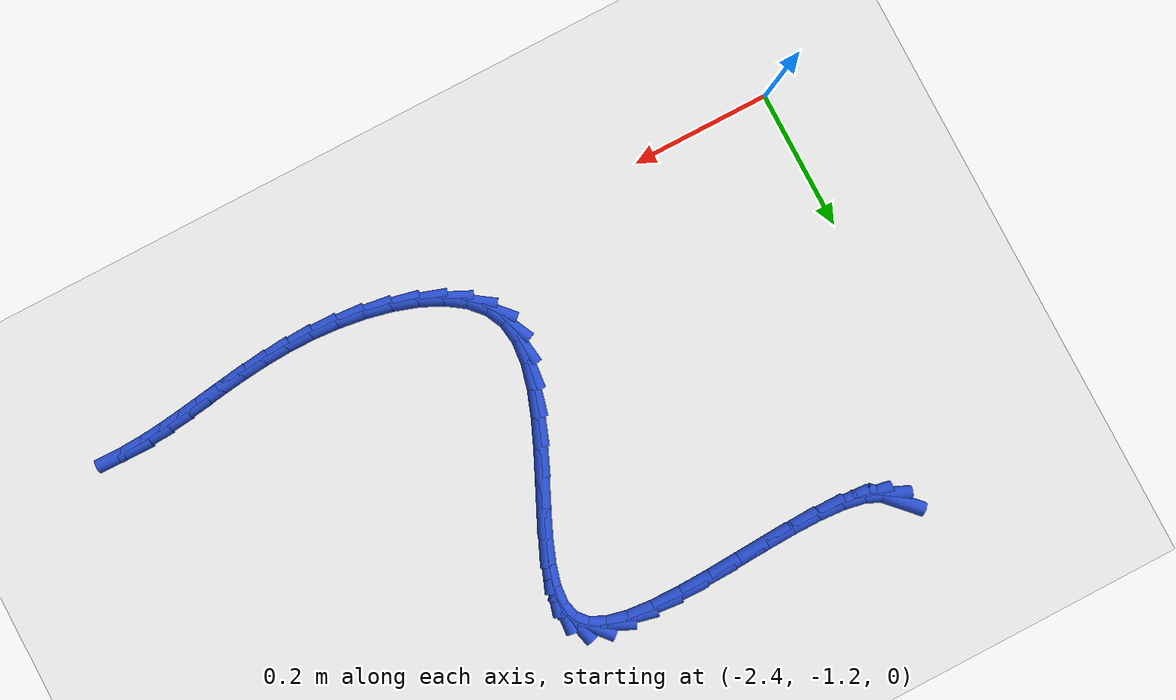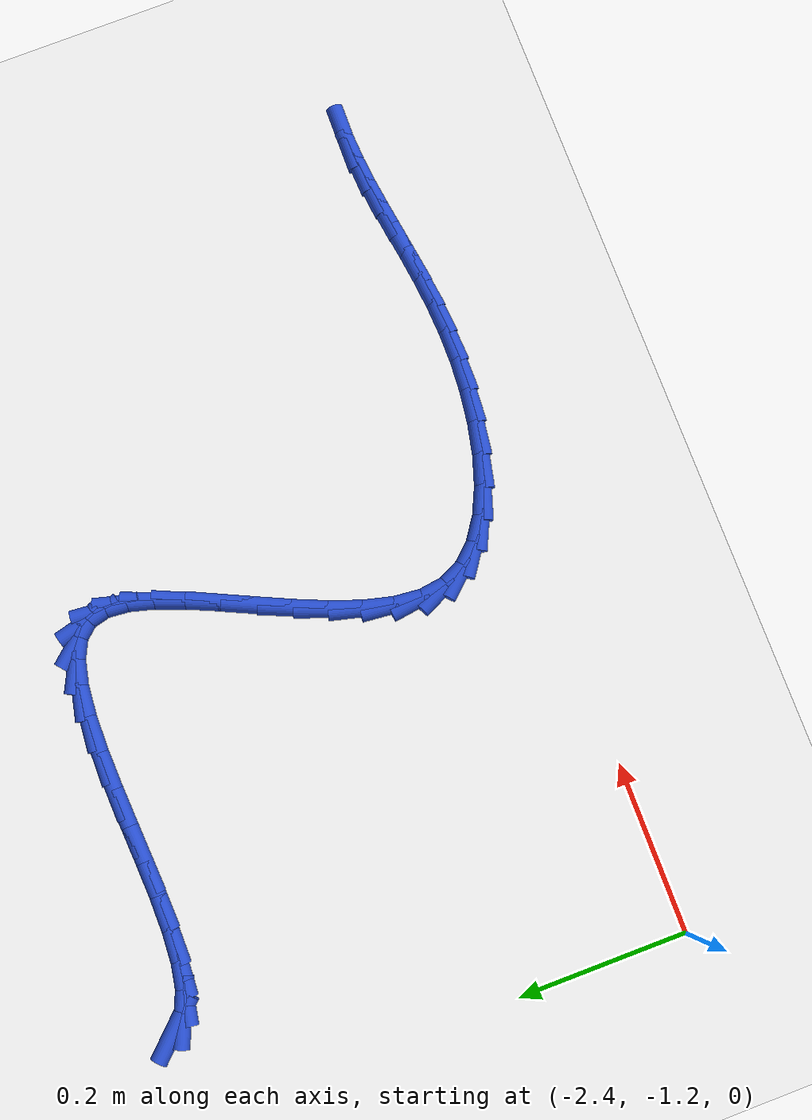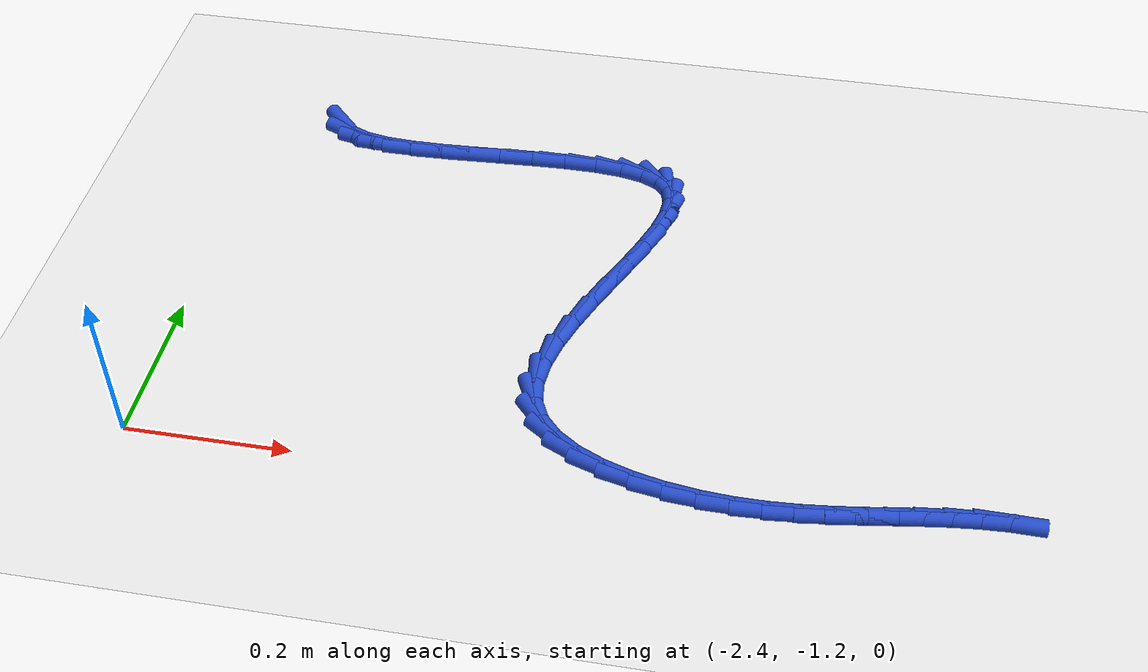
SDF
<sdf version="1.6">
 <world name="default">
  <model name="ground_plane">
   <static>1</static>
   <link name="link">
    <collision name="collision">
     <geometry><plane><normal>0 0 1</normal><size>100 100</size></plane></geometry>
     <surface><friction><ode><mu>100</mu><mu2>50</mu2></ode></friction></surface>
    </collision>
    <visual name="visual">
     <cast_shadows>0</cast_shadows>
     <geometry><plane><normal>0 0 1</normal><size>100 100</size></plane></geometry>
     <material>
      <script><uri>file://media/materials/scripts/gazebo.material</uri><name>Gazebo/WhiteGlow</name></script>
     </material>
    </visual>
   </link>
  </model>
  <model name="line">
   <link name="link_152">
    <pose>-2.29422943024641 -0.6340302481217502 0.01 0 1.57 -0.8101605777652685</pose>
    <collision name="collision">
     <geometry><cylinder><radius>0.01</radius><length>0.08</length></cylinder></geometry>
    </collision>
    <visual name="visual">
     <material>
      <script><name>Gazebo/Blue</name><uri>file://media/materials/scripts/gazebo.material</uri></script>
     </material>
     <geometry><cylinder><radius>0.01</radius><length>0.08</length></cylinder></geometry>
    </visual>
   </link>
   <link name="link_153">
    <pose>-2.280447328265743 -0.6485123839584834 0.01 0 1.57 -0.40256517774846556</pose>
    <collision name="collision">
     <geometry><cylinder><radius>0.01</radius><length>0.08</length></cylinder></geometry>
    </collision>
    <visual name="visual">
     <material>
      <script><name>Gazebo/Blue</name><uri>file://media/materials/scripts/gazebo.material</uri></script>
     </material>
     <geometry><cylinder><radius>0.01</radius><length>0.08</length></cylinder></geometry>
    </visual>
   </link>
   <link name="link_154">
    <pose>-2.2579671868441413 -0.6580848827711578 0.01 0 1.57 -0.18310149964613587</pose>
    <collision name="collision">
     <geometry><cylinder><radius>0.01</radius><length>0.08</length></cylinder></geometry>
    </collision>
    <visual name="visual">
     <material>
      <script><name>Gazebo/Blue</name><uri>file://media/materials/scripts/gazebo.material</uri></script>
     </material>
     <geometry><cylinder><radius>0.01</radius><length>0.08</length></cylinder></geometry>
    </visual>
   </link>
   <link name="link_155">
    <pose>-2.2282357538673785 -0.6635904171669803 0.01 0 1.57 -0.06410733100552299</pose>
    <collision name="collision">
     <geometry><cylinder><radius>0.01</radius><length>0.08</length></cylinder></geometry>
    </collision>
    <visual name="visual">
     <material>
      <script><name>Gazebo/Blue</name><uri>file://media/materials/scripts/gazebo.material</uri></script>
     </material>
     <geometry><cylinder><radius>0.01</radius><length>0.08</length></cylinder></geometry>
    </visual>
   </link>
   <link name="link_156">
    <pose>-2.1926997772212284 -0.6658716597531583 0.01 0 1.57 0.0025160920697075355</pose>
    <collision name="collision">
     <geometry><cylinder><radius>0.01</radius><length>0.08</length></cylinder></geometry>
    </collision>
    <visual name="visual">
     <material>
      <script><name>Gazebo/Blue</name><uri>file://media/materials/scripts/gazebo.material</uri></script>
     </material>
     <geometry><cylinder><radius>0.01</radius><length>0.08</length></cylinder></geometry>
    </visual>
   </link>
   <link name="link_157">
    <pose>-2.152806004791467 -0.6657712831368983 0.01 0 1.57 0.03827892358250948</pose>
    <collision name="collision">
     <geometry><cylinder><radius>0.01</radius><length>0.08</length></cylinder></geometry>
    </collision>
    <visual name="visual">
     <material>
      <script><name>Gazebo/Blue</name><uri>file://media/materials/scripts/gazebo.material</uri></script>
     </material>
     <geometry><cylinder><radius>0.01</radius><length>0.08</length></cylinder></geometry>
    </visual>
   </link>
   <link name="link_158">
    <pose>-2.110001184463868 -0.6641319599254081 0.01 0 1.57 0.05271019018104346</pose>
    <collision name="collision">
     <geometry><cylinder><radius>0.01</radius><length>0.08</length></cylinder></geometry>
    </collision>
    <visual name="visual">
     <material>
      <script><name>Gazebo/Blue</name><uri>file://media/materials/scripts/gazebo.material</uri></script>
     </material>
     <geometry><cylinder><radius>0.01</radius><length>0.08</length></cylinder></geometry>
    </visual>
   </link>
   <link name="link_159">
    <pose>-2.0657320641242034 -0.6617963627258936 0.01 0 1.57 0.04939224189444913</pose>
    <collision name="collision">
     <geometry><cylinder><radius>0.01</radius><length>0.08</length></cylinder></geometry>
    </collision>
    <visual name="visual">
     <material>
      <script><name>Gazebo/Blue</name><uri>file://media/materials/scripts/gazebo.material</uri></script>
     </material>
     <geometry><cylinder><radius>0.01</radius><length>0.08</length></cylinder></geometry>
    </visual>
   </link>
   <link name="link_160">
    <pose>-2.0214453916582498 -0.6596071641455628 0.01 0 1.57 0.027995437405188672</pose>
    <collision name="collision">
     <geometry><cylinder><radius>0.01</radius><length>0.08</length></cylinder></geometry>
    </collision>
    <visual name="visual">
     <material>
      <script><name>Gazebo/Blue</name><uri>file://media/materials/scripts/gazebo.material</uri></script>
     </material>
     <geometry><cylinder><radius>0.01</radius><length>0.08</length></cylinder></geometry>
    </visual>
   </link>
   <link name="link_161">
    <pose>-1.9785879149517802 -0.6584070367916222 0.01 0 1.57 -0.015796391371708022</pose>
    <collision name="collision">
     <geometry><cylinder><radius>0.01</radius><length>0.08</length></cylinder></geometry>
    </collision>
    <visual name="visual">
     <material>
      <script><name>Gazebo/Blue</name><uri>file://media/materials/scripts/gazebo.material</uri></script>
     </material>
     <geometry><cylinder><radius>0.01</radius><length>0.08</length></cylinder></geometry>
    </visual>
   </link>
   <link name="link_162">
    <pose>-1.9386063818905692 -0.659038653271279 0.01 0 1.57 -0.09244857120028631</pose>
    <collision name="collision">
     <geometry><cylinder><radius>0.01</radius><length>0.08</length></cylinder></geometry>
    </collision>
    <visual name="visual">
     <material>
      <script><name>Gazebo/Blue</name><uri>file://media/materials/scripts/gazebo.material</uri></script>
     </material>
     <geometry><cylinder><radius>0.01</radius><length>0.08</length></cylinder></geometry>
    </visual>
   </link>
   <link name="link_163">
    <pose>-1.90294754036039 -0.6623446861917399 0.01 0 1.57 -0.22443321429692567</pose>
    <collision name="collision">
     <geometry><cylinder><radius>0.01</radius><length>0.08</length></cylinder></geometry>
    </collision>
    <visual name="visual">
     <material>
      <script><name>Gazebo/Blue</name><uri>file://media/materials/scripts/gazebo.material</uri></script>
     </material>
     <geometry><cylinder><radius>0.01</radius><length>0.08</length></cylinder></geometry>
    </visual>
   </link>
   <link name="link_164">
    <pose>-1.8730581382470182 -0.6691678081602127 0.01 0 1.57 -0.4582089345431656</pose>
    <collision name="collision">
     <geometry><cylinder><radius>0.01</radius><length>0.08</length></cylinder></geometry>
    </collision>
    <visual name="visual">
     <material>
      <script><name>Gazebo/Blue</name><uri>file://media/materials/scripts/gazebo.material</uri></script>
     </material>
     <geometry><cylinder><radius>0.01</radius><length>0.08</length></cylinder></geometry>
    </visual>
   </link>
   <link name="link_165">
    <pose>-1.8503849234362257 -0.680350691783904 0.01 0 1.57 -0.8615199114040122</pose>
    <collision name="collision">
     <geometry><cylinder><radius>0.01</radius><length>0.08</length></cylinder></geometry>
    </collision>
    <visual name="visual">
     <material>
      <script><name>Gazebo/Blue</name><uri>file://media/materials/scripts/gazebo.material</uri></script>
     </material>
     <geometry><cylinder><radius>0.01</radius><length>0.08</length></cylinder></geometry>
    </visual>
   </link>
   <link name="link_166">
    <pose>-1.8363389090805864 -0.6967161633895399 0.01 0 1.57 -1.3331660433897738</pose>
    <collision name="collision">
     <geometry><cylinder><radius>0.01</radius><length>0.08</length></cylinder></geometry>
    </collision>
    <visual name="visual">
     <material>
      <script><name>Gazebo/Blue</name><uri>file://media/materials/scripts/gazebo.material</uri></script>
     </material>
     <geometry><cylinder><radius>0.01</radius><length>0.08</length></cylinder></geometry>
    </visual>
   </link>
   <link name="link_167">
    <pose>-1.8310877820351614 -0.7183965333766903 0.01 0 1.57 1.4881688129031339</pose>
    <collision name="collision">
     <geometry><cylinder><radius>0.01</radius><length>0.08</length></cylinder></geometry>
    </collision>
    <visual name="visual">
     <material>
      <script><name>Gazebo/Blue</name><uri>file://media/materials/scripts/gazebo.material</uri></script>
     </material>
     <geometry><cylinder><radius>0.01</radius><length>0.08</length></cylinder></geometry>
    </visual>
   </link>
   <link name="link_168">
    <pose>-1.8332637587417895 -0.7446713458372124 0.01 0 1.57 1.3066391110331106</pose>
    <collision name="collision">
     <geometry><cylinder><radius>0.01</radius><length>0.08</length></cylinder></geometry>
    </collision>
    <visual name="visual">
     <material>
      <script><name>Gazebo/Blue</name><uri>file://media/materials/scripts/gazebo.material</uri></script>
     </material>
     <geometry><cylinder><radius>0.01</radius><length>0.08</length></cylinder></geometry>
    </visual>
   </link>
   <link name="link_169">
    <pose>-1.8414040750637022 -0.7747673947502777 0.01 0 1.57 1.2064070477604258</pose>
    <collision name="collision">
     <geometry><cylinder><radius>0.01</radius><length>0.08</length></cylinder></geometry>
    </collision>
    <visual name="visual">
     <material>
      <script><name>Gazebo/Blue</name><uri>file://media/materials/scripts/gazebo.material</uri></script>
     </material>
     <geometry><cylinder><radius>0.01</radius><length>0.08</length></cylinder></geometry>
    </visual>
   </link>
   <link name="link_170">
    <pose>-1.8540459668641314 -0.807911474095058 0.01 0 1.57 1.1540118308186342</pose>
    <collision name="collision">
     <geometry><cylinder><radius>0.01</radius><length>0.08</length></cylinder></geometry>
    </collision>
    <visual name="visual">
     <material>
      <script><name>Gazebo/Blue</name><uri>file://media/materials/scripts/gazebo.material</uri></script>
     </material>
     <geometry><cylinder><radius>0.01</radius><length>0.08</length></cylinder></geometry>
    </visual>
   </link>
   <link name="link_171">
    <pose>-1.8697266700063102 -0.8433303778507247 0.01 0 1.57 1.1335649614290755</pose>
    <collision name="collision">
     <geometry><cylinder><radius>0.01</radius><length>0.08</length></cylinder></geometry>
    </collision>
    <visual name="visual">
     <material>
      <script><name>Gazebo/Blue</name><uri>file://media/materials/scripts/gazebo.material</uri></script>
     </material>
     <geometry><cylinder><radius>0.01</radius><length>0.08</length></cylinder></geometry>
    </visual>
   </link>
   <link name="link_172">
    <pose>-1.8869834203534706 -0.880250899996451 0.01 0 1.57 1.1385286536412638</pose>
    <collision name="collision">
     <geometry><cylinder><radius>0.01</radius><length>0.08</length></cylinder></geometry>
    </collision>
    <visual name="visual">
     <material>
      <script><name>Gazebo/Blue</name><uri>file://media/materials/scripts/gazebo.material</uri></script>
     </material>
     <geometry><cylinder><radius>0.01</radius><length>0.08</length></cylinder></geometry>
    </visual>
   </link>
   <link name="link_173">
    <pose>-1.904353453768844 -0.9178998345114062 0.01 0 1.57 1.1680522283676946</pose>
    <collision name="collision">
     <geometry><cylinder><radius>0.01</radius><length>0.08</length></cylinder></geometry>
    </collision>
    <visual name="visual">
     <material>
      <script><name>Gazebo/Blue</name><uri>file://media/materials/scripts/gazebo.material</uri></script>
     </material>
     <geometry><cylinder><radius>0.01</radius><length>0.08</length></cylinder></geometry>
    </visual>
   </link>
   <link name="link_174">
    <pose>-1.920374006115662 -0.9555039753747625 0.01 0 1.57 1.2260761514535652</pose>
    <collision name="collision">
     <geometry><cylinder><radius>0.01</radius><length>0.08</length></cylinder></geometry>
    </collision>
    <visual name="visual">
     <material>
      <script><name>Gazebo/Blue</name><uri>file://media/materials/scripts/gazebo.material</uri></script>
     </material>
     <geometry><cylinder><radius>0.01</radius><length>0.08</length></cylinder></geometry>
    </visual>
   </link>
   <link name="link_175">
    <pose>-1.9335823132571583 -0.9922901165656925 0.01 0 1.57 1.322222429868844</pose>
    <collision name="collision">
     <geometry><cylinder><radius>0.01</radius><length>0.08</length></cylinder></geometry>
    </collision>
    <visual name="visual">
     <material>
      <script><name>Gazebo/Blue</name><uri>file://media/materials/scripts/gazebo.material</uri></script>
     </material>
     <geometry><cylinder><radius>0.01</radius><length>0.08</length></cylinder></geometry>
    </visual>
   </link>
   <link name="link_176">
    <pose>-1.9425156110565636 -1.0274850520633672 0.01 0 1.57 1.4737680258324266</pose>
    <collision name="collision">
     <geometry><cylinder><radius>0.01</radius><length>0.08</length></cylinder></geometry>
    </collision>
    <visual name="visual">
     <material>
      <script><name>Gazebo/Blue</name><uri>file://media/materials/scripts/gazebo.material</uri></script>
     </material>
     <geometry><cylinder><radius>0.01</radius><length>0.08</length></cylinder></geometry>
    </visual>
   </link>
   <link name="link_177">
    <pose>-1.945711135377111 -1.0603155758469587 0.01 0 1.57 -1.4367243240580887</pose>
    <collision name="collision">
     <geometry><cylinder><radius>0.01</radius><length>0.08</length></cylinder></geometry>
    </collision>
    <visual name="visual">
     <material>
      <script><name>Gazebo/Blue</name><uri>file://media/materials/scripts/gazebo.material</uri></script>
     </material>
     <geometry><cylinder><radius>0.01</radius><length>0.08</length></cylinder></geometry>
    </visual>
   </link>
   <link name="link_178">
    <pose>-1.9417061220820315 -1.090008481895638 0.01 0 1.57 -1.1238400393866936</pose>
    <collision name="collision">
     <geometry><cylinder><radius>0.01</radius><length>0.08</length></cylinder></geometry>
    </collision>
    <visual name="visual">
     <material>
      <script><name>Gazebo/Blue</name><uri>file://media/materials/scripts/gazebo.material</uri></script>
     </material>
     <geometry><cylinder><radius>0.01</radius><length>0.08</length></cylinder></geometry>
    </visual>
   </link>
   <link name="link_179">
    <pose>-1.929305175521945 -1.1158811610620094 0.01 0 1.57 -0.8283025939876512</pose>
    <collision name="collision">
     <geometry><cylinder><radius>0.01</radius><length>0.08</length></cylinder></geometry>
    </collision>
    <visual name="visual">
     <material>
      <script><name>Gazebo/Blue</name><uri>file://media/materials/scripts/gazebo.material</uri></script>
     </material>
     <geometry><cylinder><radius>0.01</radius><length>0.08</length></cylinder></geometry>
    </visual>
   </link>
   <link name="link_180">
    <pose>-1.9091297129847034 -1.1378666248850673 0.01 0 1.57 -0.6027654111693783</pose>
    <collision name="collision">
     <geometry><cylinder><radius>0.01</radius><length>0.08</length></cylinder></geometry>
    </collision>
    <visual name="visual">
     <material>
      <script><name>Gazebo/Blue</name><uri>file://media/materials/scripts/gazebo.material</uri></script>
     </material>
     <geometry><cylinder><radius>0.01</radius><length>0.08</length></cylinder></geometry>
    </visual>
   </link>
   <link name="link_181">
    <pose>-1.882557075608087 -1.156154027046905 0.01 0 1.57 -0.43759730698753385</pose>
    <collision name="collision">
     <geometry><cylinder><radius>0.01</radius><length>0.08</length></cylinder></geometry>
    </collision>
    <visual name="visual">
     <material>
      <script><name>Gazebo/Blue</name><uri>file://media/materials/scripts/gazebo.material</uri></script>
     </material>
     <geometry><cylinder><radius>0.01</radius><length>0.08</length></cylinder></geometry>
    </visual>
   </link>
   <link name="link_182">
    <pose>-1.8509670837782428 -1.1709333613142205 0.01 0 1.57 -0.3145480339406696</pose>
    <collision name="collision">
     <geometry><cylinder><radius>0.01</radius><length>0.08</length></cylinder></geometry>
    </collision>
    <visual name="visual">
     <material>
      <script><name>Gazebo/Blue</name><uri>file://media/materials/scripts/gazebo.material</uri></script>
     </material>
     <geometry><cylinder><radius>0.01</radius><length>0.08</length></cylinder></geometry>
    </visual>
   </link>
   <link name="link_183">
    <pose>-1.815739557881317 -1.182394621453714 0.01 0 1.57 -0.21874842662445557</pose>
    <collision name="collision">
     <geometry><cylinder><radius>0.01</radius><length>0.08</length></cylinder></geometry>
    </collision>
    <visual name="visual">
     <material>
      <script><name>Gazebo/Blue</name><uri>file://media/materials/scripts/gazebo.material</uri></script>
     </material>
     <geometry><cylinder><radius>0.01</radius><length>0.08</length></cylinder></geometry>
    </visual>
   </link>
   <link name="link_184">
    <pose>-1.7782543183034547 -1.1907278012320832 0.01 0 1.57 -0.13971597068045344</pose>
    <collision name="collision">
     <geometry><cylinder><radius>0.01</radius><length>0.08</length></cylinder></geometry>
    </collision>
    <visual name="visual">
     <material>
      <script><name>Gazebo/Blue</name><uri>file://media/materials/scripts/gazebo.material</uri></script>
     </material>
     <geometry><cylinder><radius>0.01</radius><length>0.08</length></cylinder></geometry>
    </visual>
   </link>
   <link name="link_185">
    <pose>-1.7398911854308026 -1.1961228944160274 0.01 0 1.57 -0.06980913811614238</pose>
    <collision name="collision">
     <geometry><cylinder><radius>0.01</radius><length>0.08</length></cylinder></geometry>
    </collision>
    <visual name="visual">
     <material>
      <script><name>Gazebo/Blue</name><uri>file://media/materials/scripts/gazebo.material</uri></script>
     </material>
     <geometry><cylinder><radius>0.01</radius><length>0.08</length></cylinder></geometry>
    </visual>
   </link>
   <link name="link_186">
    <pose>-1.7020272100940155 -1.1987704480862076 0.01 0 1.57 -0.005042140595258</pose>
    <collision name="collision">
     <geometry><cylinder><radius>0.01</radius><length>0.08</length></cylinder></geometry>
    </collision>
    <visual name="visual">
     <material>
      <script><name>Gazebo/Blue</name><uri>file://media/materials/scripts/gazebo.material</uri></script>
     </material>
     <geometry><cylinder><radius>0.01</radius><length>0.08</length></cylinder></geometry>
    </visual>
   </link>
   <link name="link_187">
    <pose>-1.6655726943806453 -1.1989542584374504 0.01 0 1.57 0.051170830443961035</pose>
    <collision name="collision">
     <geometry><cylinder><radius>0.01</radius><length>0.08</length></cylinder></geometry>
    </collision>
    <visual name="visual">
     <material>
      <script><name>Gazebo/Blue</name><uri>file://media/materials/scripts/gazebo.material</uri></script>
     </material>
     <geometry><cylinder><radius>0.01</radius><length>0.08</length></cylinder></geometry>
    </visual>
   </link>
   <link name="link_188">
    <pose>-1.630450263178551 -1.1971554441540704 0.01 0 1.57 0.09605183661534572</pose>
    <collision name="collision">
     <geometry><cylinder><radius>0.01</radius><length>0.08</length></cylinder></geometry>
    </collision>
    <visual name="visual">
     <material>
      <script><name>Gazebo/Blue</name><uri>file://media/materials/scripts/gazebo.material</uri></script>
     </material>
     <geometry><cylinder><radius>0.01</radius><length>0.08</length></cylinder></geometry>
    </visual>
   </link>
   <link name="link_189">
    <pose>-1.5964568473627925 -1.1938802356223883 0.01 0 1.57 0.1276866754526668</pose>
    <collision name="collision">
     <geometry><cylinder><radius>0.01</radius><length>0.08</length></cylinder></geometry>
    </collision>
    <visual name="visual">
     <material>
      <script><name>Gazebo/Blue</name><uri>file://media/materials/scripts/gazebo.material</uri></script>
     </material>
     <geometry><cylinder><radius>0.01</radius><length>0.08</length></cylinder></geometry>
    </visual>
   </link>
   <link name="link_190">
    <pose>-1.5633893778084287 -1.189634863228727 0.01 0 1.57 0.14458199435620997</pose>
    <collision name="collision">
     <geometry><cylinder><radius>0.01</radius><length>0.08</length></cylinder></geometry>
    </collision>
    <visual name="visual">
     <material>
      <script><name>Gazebo/Blue</name><uri>file://media/materials/scripts/gazebo.material</uri></script>
     </material>
     <geometry><cylinder><radius>0.01</radius><length>0.08</length></cylinder></geometry>
    </visual>
   </link>
   <link name="link_191">
    <pose>-1.5310447853905194 -1.1849255573594089 0.01 0 1.57 0.1456091218349559</pose>
    <collision name="collision">
     <geometry><cylinder><radius>0.01</radius><length>0.08</length></cylinder></geometry>
    </collision>
    <visual name="visual">
     <material>
      <script><name>Gazebo/Blue</name><uri>file://media/materials/scripts/gazebo.material</uri></script>
     </material>
     <geometry><cylinder><radius>0.01</radius><length>0.08</length></cylinder></geometry>
    </visual>
   </link>
   <link name="link_192">
    <pose>-1.4992200009841228 -1.180258548400756 0.01 0 1.57 0.1299751702826759</pose>
    <collision name="collision">
     <geometry><cylinder><radius>0.01</radius><length>0.08</length></cylinder></geometry>
    </collision>
    <visual name="visual">
     <material>
      <script><name>Gazebo/Blue</name><uri>file://media/materials/scripts/gazebo.material</uri></script>
     </material>
     <geometry><cylinder><radius>0.01</radius><length>0.08</length></cylinder></geometry>
    </visual>
   </link>
   <link name="link_193">
    <pose>-1.4677119554642981 -1.1761400667390898 0.01 0 1.57 0.09728027184083936</pose>
    <collision name="collision">
     <geometry><cylinder><radius>0.01</radius><length>0.08</length></cylinder></geometry>
    </collision>
    <visual name="visual">
     <material>
      <script><name>Gazebo/Blue</name><uri>file://media/materials/scripts/gazebo.material</uri></script>
     </material>
     <geometry><cylinder><radius>0.01</radius><length>0.08</length></cylinder></geometry>
    </visual>
   </link>
   <link name="link_194">
    <pose>-1.4363175797061059 -1.1730763427607331 0.01 0 1.57 0.04769428961318188</pose>
    <collision name="collision">
     <geometry><cylinder><radius>0.01</radius><length>0.08</length></cylinder></geometry>
    </collision>
    <visual name="visual">
     <material>
      <script><name>Gazebo/Blue</name><uri>file://media/materials/scripts/gazebo.material</uri></script>
     </material>
     <geometry><cylinder><radius>0.01</radius><length>0.08</length></cylinder></geometry>
    </visual>
   </link>
   <link name="link_195">
    <pose>-1.4048338045846045 -1.1715736068520084 0.01 0 1.57 -0.017762426152450557</pose>
    <collision name="collision">
     <geometry><cylinder><radius>0.01</radius><length>0.08</length></cylinder></geometry>
    </collision>
    <visual name="visual">
     <material>
      <script><name>Gazebo/Blue</name><uri>file://media/materials/scripts/gazebo.material</uri></script>
     </material>
     <geometry><cylinder><radius>0.01</radius><length>0.08</length></cylinder></geometry>
    </visual>
   </link>
  </model>
 </world>
</sdf>
